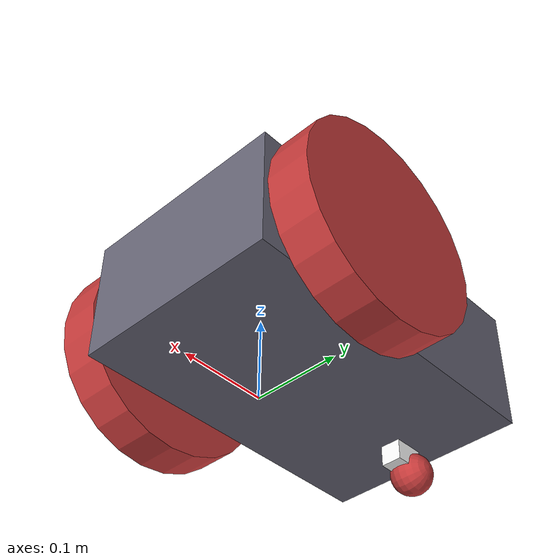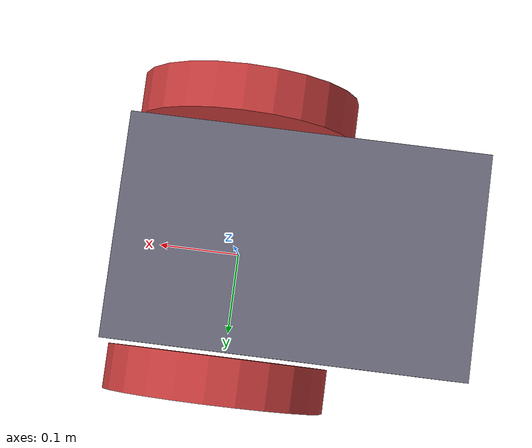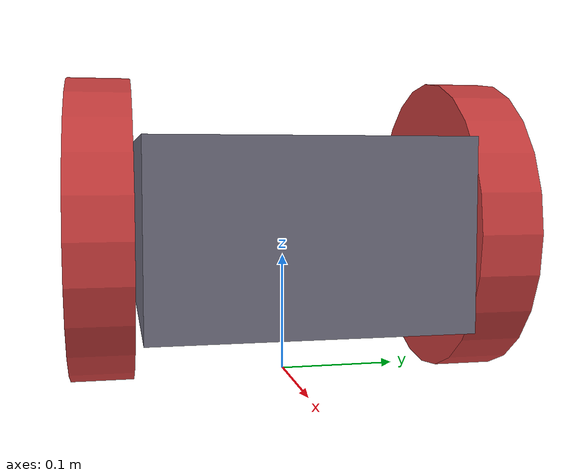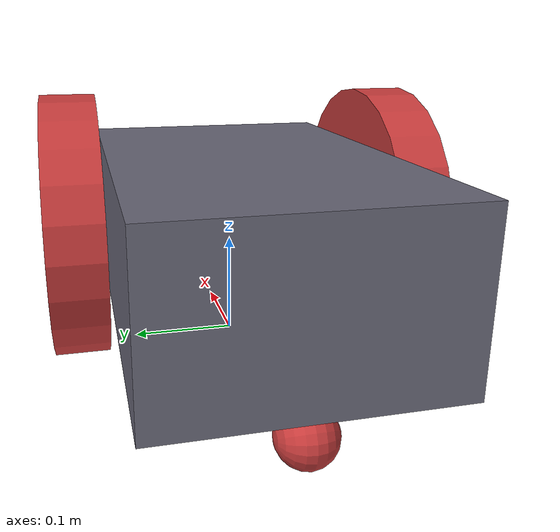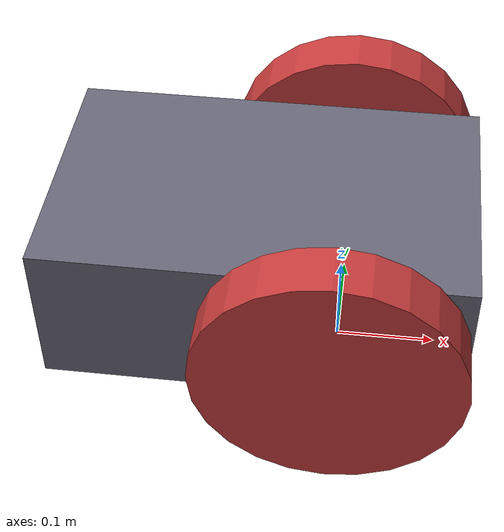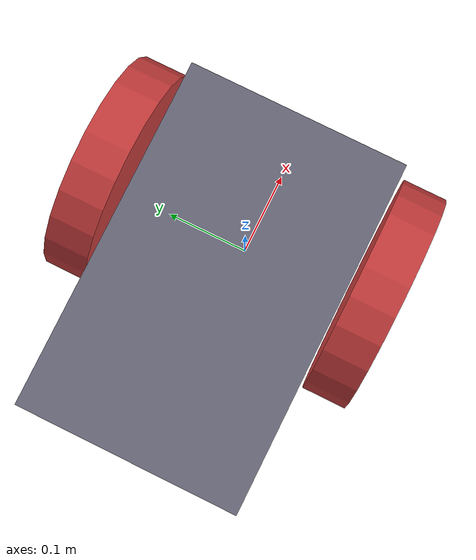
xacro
<?xml version="1.0"?>
<robot name="$(arg robot_name)"
  xmlns:xacro="http://www.ros.org/wiki/xacro">

  <xacro:arg name="robot_name" default="sr_robot"/>
  <xacro:arg name="update_rate" default="20.0"/>
  <xacro:property name="robot_name" value="$(arg robot_name)"/>
  <xacro:property name="update_rate" value="$(arg update_rate)"/>

  <!-- Constants -->
  <xacro:property name="PI" value="3.1415926535897931"/>

  <!-- Wheels constants -->
  <xacro:property name="wheel_mass" value="1"/>
  <xacro:property name="wheel_radius" value="0.125"/>
  <xacro:property name="wheel_width" value="0.05"/>

  <!-- Chassis constants -->
  <xacro:property name="chassis_mass" value="3"/>
  <xacro:property name="chassis_lenght" value="0.4"/>
  <xacro:property name="chassis_width" value="0.25"/>
  <xacro:property name="chassis_height" value="0.15"/>

  <!-- Robot constants -->
  <xacro:property name="clearence" value="${(wheel_radius-chassis_height/2.0)}"/>
  <xacro:property name="separation" value="${chassis_width+wheel_width+0.01}"/>
  <xacro:property name="axle_offset" value="${chassis_lenght/2-wheel_radius}"/>

  <!-- Caster wheel -->
  <xacro:property name="caster_mass" value="0.12"/>
  <xacro:property name="caster_radius" value="${clearence/2.0}"/>
  <xacro:property name="caster_offset" value="${caster_radius*1.5}"/>

  <!-- Import macros -->
  <xacro:include filename="$(find sr_description)/urdf/macros.xacro" />

  <!-- Robot links -->

  <link name="${robot_name}/base_footprint"/>

  <xacro:chassis name="${robot_name}/base" mass="${chassis_mass}" lenght="${chassis_lenght}" width="${chassis_width}" height="${chassis_height}" clearence="${clearence}" axle_offset="${axle_offset}" />

  <xacro:wheel name="${robot_name}/wheel_left" mass="${wheel_mass}" radius="${wheel_radius}" width="${wheel_width}" dx="0" dy="${separation/2.0}" />

  <xacro:wheel name="${robot_name}/wheel_right" radius="${wheel_radius}" width="${wheel_width}" mass="${wheel_mass}" dx="0" dy="-${separation/2.0}" />

  <xacro:caster name="${robot_name}/caster" radius="${caster_radius}" mass="${caster_mass}" offset="${caster_offset}" dx="${caster_radius+caster_offset-chassis_lenght/2.0-axle_offset}" />

  <!-- IMU -->
  <link name="${robot_name}/imu_link" />
  <joint name="${robot_name}/imu_joint" type="fixed">
    <parent link="${robot_name}/base_link" />
    <child link="${robot_name}/imu_link" />
    <origin xyz="0.0 0.0 0.0" rpy="0 0 0" />
  </joint>

  <!-- Camera -->
  <link name="${robot_name}/camera_link" />
  <joint name="${robot_name}/camera_joint" type="fixed">
    <parent link="${robot_name}/base_link" />
    <child link="${robot_name}/camera_link" />
    <origin xyz="${chassis_lenght/2.0-axle_offset+0.05} 0.0 0.0" rpy="0 0 0" />
  </joint>

  <link name="${robot_name}/lidar_link"/>
  <joint name="${robot_name}/lidar_joint" type="fixed">
    <parent link="${robot_name}/base_link" />
    <child link="${robot_name}/lidar_link"/>
    <origin xyz="${chassis_lenght/2.0-axle_offset+0.05} 0.0 0.5" rpy="0 0 0"/>
  </joint>

  <xacro:include filename="$(find sr_description)/urdf/sr_robot.gazebo" />

</robot>

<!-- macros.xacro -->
<robot xmlns:xacro="http://www.ros.org/wiki/xacro">

  <xacro:include filename="$(find sr_description)/urdf/inertials.xacro" />
  <xacro:include filename="$(find sr_description)/urdf/materials.xacro" />

  <!-- Wheel Joint and Link definition MACRO -->
  <xacro:macro name="wheel" params="name radius width mass dx dy">
    <link name="${name}_link">
      <collision>
        <origin xyz="0 0 0" rpy="0 0 0"/>
        <geometry>
          <cylinder radius="${radius}" length="${width}"/>
        </geometry>
      </collision>

      <visual>
        <origin xyz="0 0 0" rpy="0 0 0"/>
        <geometry>
          <cylinder radius="${radius}" length="${width}"/>
        </geometry>
        <material name="wheel"/>
      </visual>

      <xacro:cylinder_inertial mass="${mass}" radius="${radius}" length="${width}">
        <origin xyz="0 0 0" rpy="0 0 0"/>
      </xacro:cylinder_inertial>
    </link>

    <joint name="${name}_joint" type="continuous">
      <parent link="${robot_name}/base_footprint"/>
      <child link="${name}_link"/>
      <origin xyz="${dx} ${dy} ${wheel_radius}" rpy="${-PI/2.0} 0 0"/>
      <axis xyz="0 0 1"/>
      <limit effort="-1" velocity="-1" />
      <dynamics damping="0.0" friction="10"/>

    </joint>

    <transmission name="${name}_trans">
      <type>transmission_interface/SimpleTransmission</type>
      <joint name="${name}_joint">
        <hardwareInterface>hardware_interface/VelocityJointInterface</hardwareInterface>
      </joint>
      <actuator name="${name}_act">
        <hardwareInterface>hardware_interface/VelocityJointInterface</hardwareInterface>
        <mechanicalReduction>1</mechanicalReduction>
      </actuator>
    </transmission>

  </xacro:macro>

  <!-- Chassis Joint and Link definition MACRO -->
  <xacro:macro name="chassis" params="name lenght width height axle_offset clearence mass">
    <link name="${name}_link">
      <collision>
        <origin xyz="${-axle_offset} 0 0" rpy="0 0 0"/>
        <geometry>
          <box size="${lenght} ${width} ${height}"/>
        </geometry>
      </collision>

      <visual>
        <origin xyz="${-axle_offset} 0 0" rpy="0 0 0"/>
        <geometry>
          <box size="${lenght} ${width} ${height}"/>
        </geometry>
        <material name="chassis"/>
      </visual>

      <xacro:box_inertial mass="${mass}" x="${lenght}" y="${width}" z="${height}">
        <origin xyz="${-axle_offset} 0 0" rpy="0 0 0" />
      </xacro:box_inertial>
    </link>

    <joint name="${name}_joint" type="fixed">
      <parent link="${robot_name}/base_footprint"/>
      <child link="${name}_link"/>
      <origin xyz="0 0 ${height/2.0 + clearence}" rpy="0 0 0"/>
    </joint>

  </xacro:macro>

  <!-- Caster wheel joint and Link definition MACRO -->
  <xacro:macro name="caster" params="name radius mass offset dx">
    <link name="${name}_rotation_link">
      <collision>
        <origin xyz="${-offset/2.0} 0 0" rpy="0 0 0" />
        <geometry>
          <box size="${offset} ${radius} ${radius}"/>
        </geometry>
      </collision>

      <visual>
        <origin xyz="${-offset/2.0} 0 0" rpy="0 0 0" />
        <geometry>
          <box size="${offset} ${radius} ${radius}"/>
        </geometry>
        <material name="white"/>
      </visual>

      <xacro:box_inertial mass="${mass*0.5}" x="${offset}" y="${radius}" z="${radius}">
        <origin xyz="${-offset/2.0} 0 0" rpy="0 0 0" />
      </xacro:box_inertial>
    </link>

    <joint name="${name}_rotation_joint" type="continuous">
      <parent link="${robot_name}/base_footprint"/>
      <child link="${name}_rotation_link"/>
      <origin xyz="${dx} 0 ${1.5*caster_radius}" rpy="0 0 0"/>
      <axis xyz="0 0 1"/>
      <dynamics damping="0.01" friction="0.1"/>
    </joint>

    <link name="${name}_wheel_link">
      <collision>
        <origin xyz="0 0 0" rpy="0 0 0"/>
        <geometry>
          <sphere radius="${radius}"/>
        </geometry>
      </collision>

      <visual>
        <origin xyz="0 0 0" rpy="0 0 0"/>
        <geometry>
          <sphere radius="${radius}"/>
        </geometry>
        <material name="wheel"/>
      </visual>

      <xacro:sphere_inertial mass="${mass*0.5}" radius="${radius}">
        <origin xyz="0 0 0" rpy="0 0 0" />
      </xacro:sphere_inertial>
    </link>

    <joint name="${name}_wheel_joint" type="continuous">
      <parent link="${name}_rotation_link"/>
      <child link="${name}_wheel_link"/>
      <origin xyz="${-offset} 0 ${-caster_radius / 2.0}" rpy="${-PI/2.0} 0 0"/>
      <axis xyz="0 0 1"/>
      <dynamics damping="0.01" friction="1.5"/>
    </joint>

  </xacro:macro>

</robot>

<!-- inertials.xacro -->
<robot xmlns:xacro="http://www.ros.org/wiki/xacro">

<xacro:macro name="sphere_inertial" params="radius mass *origin">
  <inertial>
    <mass value="${mass}" />
    <xacro:insert_block name="origin" />
    <inertia ixx="${0.4 * mass * radius * radius}" ixy="0.0" ixz="0.0"
      iyy="${0.4 * mass * radius * radius}" iyz="0.0"
      izz="${0.4 * mass * radius * radius}" />
  </inertial>
</xacro:macro>

<xacro:macro name="cylinder_inertial" params="radius length mass *origin">
  <inertial>
    <mass value="${mass}" />
    <xacro:insert_block name="origin" />
    <inertia ixx="${0.0833333 * mass * (3 * radius * radius + length * length)}" ixy="0.0" ixz="0.0"
      iyy="${0.0833333 * mass * (3 * radius * radius + length * length)}" iyz="0.0"
      izz="${0.5 * mass * radius * radius}" />
  </inertial>
</xacro:macro>

<xacro:macro name="box_inertial" params="x y z mass *origin">
  <inertial>
    <mass value="${mass}" />
    <xacro:insert_block name="origin" />
    <inertia ixx="${0.0833333 * mass * (y*y + z*z)}" ixy="0.0" ixz="0.0"
      iyy="${0.0833333 * mass * (x*x + z*z)}" iyz="0.0"
      izz="${0.0833333 * mass * (x*x + y*y)}" />
  </inertial>
</xacro:macro>
</robot>

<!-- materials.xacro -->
<robot>

  <material name="wheel">
    <color rgba="${200/255} ${60/255} ${60/255} 1.0"/>
  </material>

  <material name="chassis">
    <color rgba="${104/255} ${103/255} ${119/255} 1.0"/>
  </material>

  <material name="black">
    <color rgba="0.0 0.0 0.0 1.0"/>
  </material>

  <material name="blue">
    <color rgba="0.0 0.0 0.8 1.0"/>
  </material>

  <material name="green">
    <color rgba="0.0 0.8 0.0 1.0"/>
  </material>

  <material name="grey">
    <color rgba="0.2 0.2 0.2 1.0"/>
  </material>

  <material name="orange">
    <color rgba="${255/255} ${108/255} ${10/255} 1.0"/>
  </material>

  <material name="brown">
    <color rgba="${222/255} ${207/255} ${195/255} 1.0"/>
  </material>

  <material name="red">
    <color rgba="0.8 0.0 0.0 1.0"/>
  </material>

  <material name="white">
    <color rgba="1.0 1.0 1.0 1.0"/>
  </material>

</robot>
